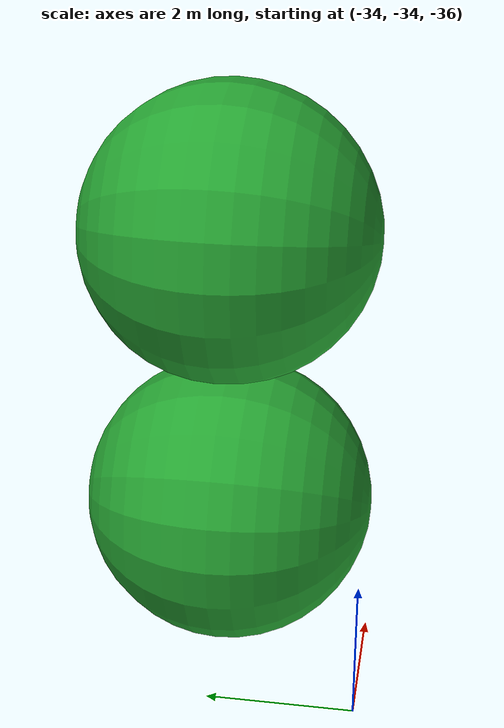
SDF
<?xml version='1.0'?>
<sdf version="1.6">

         <model name="mesh">
             <static>0</static>
             <self_collide>0</self_collide>
             <allow_auto_disable>1</allow_auto_disable>

             <frame name="object_frame">
                 <pose frame="/world">0 0 0 0 -0 0 </pose>
             </frame>

             <pose frame="/world">0 0 0 0 -0 0</pose>

        <link name="pSphere1">

                     <gravity>1</gravity>
                     <self_collide>0</self_collide>
                     <kinematic>0</kinematic>

                     <frame name="link_frame">
                         <pose frame="object_frame">0 0 0 0 -0 0</pose>
                     </frame>

                     <!-- red green blue offsets: model pivot point -->
                     <!-- 32 is just half of the voxelgrid dimension (64)-->
                     <pose name="link_frame">-32 -32 -32 0 -0 0</pose>

                     <inertial>
                         <mass>32.76</mass>
                         <inertia>
                             <!-- http://gazebosim.org/tutorials?tut=inertia&cat=build_robot -->
                             <ixx>51.77328</ixx>
                             <ixy>0.0</ixy>
                             <ixz>1e-05</ixz>
                             <iyy>51.34782</iyy>
                             <iyz>-0.0</iyz>
                             <izz>51.77327</izz>
                         </inertia>

                         <frame name="link_inertia_frame">
                             <pose frame="link_frame">0 0 0 0 -0 0</pose>
                         </frame>

                         <pose frame="link_inertia_frame">0.0 0.0 2.0 0 0 0                         </pose>
                     </inertial>

                     <collision name="collision">
                         <max_contacts>20</max_contacts>

                         <!-- A frame of reference to which a pose is relative. -->
                         <frame name="collision_frame">
                             <pose frame="link_frame">0 0 0 0 -0 0</pose>
                         </frame>
                         <!-- A position(x,y,z) and orientation(roll, pitch yaw) with respect to the specified frame. -->
                         <pose frame="collision_frame">0 0 0 0 -0 0</pose>

                         <geometry>
                             <mesh>
                                 <uri>E:\##All those tasteless damn boring stuff\#±ÏÒµÉè¼Ä\obj2sdf\stl2sdf/double_spheres.obj_sdf/pSphere1.stl</uri>
                                 <!-- Scaling factor applied to the mesh -->
                                 <scale>1.0 1.0 1.0</scale>
                             </mesh>
                         </geometry>
                         <!-- http://sdformat.org/spec?ver=1.6&elem=collision#surface_soft_contact -->
                         <surface></surface>
                     </collision>

                     <visual name="visual">
                         <cast_shadows>1</cast_shadows>
                         <transparency>0</transparency>

                         <frame name="visual_frame">
                             <pose frame="link_frame">0 0 0 0 -0 0</pose>
                         </frame>
                         <pose frame="visual_frame">0 0 0 0 -0 0</pose>

                         <material>

                             <script>
                                 <uri>file://media/materials/scripts/gazebo.material</uri>
                                 <name>Gazebo/Green</name>
                             </script>
                             <shader type="vertex">
                               <normal_map>__default__</normal_map>
                             </shader>

                             <lighting>1</lighting>
                             <ambient>0.15 0.75 0.35 1</ambient>
                             <diffuse>0.1 0.95 0.25 1</diffuse>
                             <specular>0.01 0.01 0.01 1</specular>
                             <emissive>0 0 0 1</emissive>
                         </material>

                         <geometry>
                             <mesh>
                                 <uri>E:\##All those tasteless damn boring stuff\#±ÏÒµÉè¼Ä\obj2sdf\stl2sdf/double_spheres.obj_sdf/pSphere1.stl</uri>
                                 <!-- Scaling factor applied to the mesh -->
                                 <scale>1.0 1.0 1.0</scale>
                             </mesh>
                         </geometry>
                     </visual>
                 </link>
        <link name="pSphere2">

                     <gravity>1</gravity>
                     <self_collide>0</self_collide>
                     <kinematic>0</kinematic>

                     <frame name="link_frame">
                         <pose frame="object_frame">0 0 0 0 -0 0</pose>
                     </frame>

                     <!-- red green blue offsets: model pivot point -->
                     <!-- 32 is just half of the voxelgrid dimension (64)-->
                     <pose name="link_frame">-32 -32 -32 0 -0 0</pose>

                     <inertial>
                         <mass>32.76</mass>
                         <inertia>
                             <!-- http://gazebosim.org/tutorials?tut=inertia&cat=build_robot -->
                             <ixx>51.77328</ixx>
                             <ixy>0.0</ixy>
                             <ixz>1e-05</ixz>
                             <iyy>51.34782</iyy>
                             <iyz>-0.0</iyz>
                             <izz>51.77327</izz>
                         </inertia>

                         <frame name="link_inertia_frame">
                             <pose frame="link_frame">0 0 0 0 -0 0</pose>
                         </frame>

                         <pose frame="link_inertia_frame">0.0 0.0 -2.0 0 0 0                         </pose>
                     </inertial>

                     <collision name="collision">
                         <max_contacts>20</max_contacts>

                         <!-- A frame of reference to which a pose is relative. -->
                         <frame name="collision_frame">
                             <pose frame="link_frame">0 0 0 0 -0 0</pose>
                         </frame>
                         <!-- A position(x,y,z) and orientation(roll, pitch yaw) with respect to the specified frame. -->
                         <pose frame="collision_frame">0 0 0 0 -0 0</pose>

                         <geometry>
                             <mesh>
                                 <uri>E:\##All those tasteless damn boring stuff\#±ÏÒµÉè¼Ä\obj2sdf\stl2sdf/double_spheres.obj_sdf/pSphere2.stl</uri>
                                 <!-- Scaling factor applied to the mesh -->
                                 <scale>1.0 1.0 1.0</scale>
                             </mesh>
                         </geometry>
                         <!-- http://sdformat.org/spec?ver=1.6&elem=collision#surface_soft_contact -->
                         <surface></surface>
                     </collision>

                     <visual name="visual">
                         <cast_shadows>1</cast_shadows>
                         <transparency>0</transparency>

                         <frame name="visual_frame">
                             <pose frame="link_frame">0 0 0 0 -0 0</pose>
                         </frame>
                         <pose frame="visual_frame">0 0 0 0 -0 0</pose>

                         <material>

                             <script>
                                 <uri>file://media/materials/scripts/gazebo.material</uri>
                                 <name>Gazebo/Green</name>
                             </script>
                             <shader type="vertex">
                               <normal_map>__default__</normal_map>
                             </shader>

                             <lighting>1</lighting>
                             <ambient>0.15 0.75 0.35 1</ambient>
                             <diffuse>0.1 0.95 0.25 1</diffuse>
                             <specular>0.01 0.01 0.01 1</specular>
                             <emissive>0 0 0 1</emissive>
                         </material>

                         <geometry>
                             <mesh>
                                 <uri>E:\##All those tasteless damn boring stuff\#±ÏÒµÉè¼Ä\obj2sdf\stl2sdf/double_spheres.obj_sdf/pSphere2.stl</uri>
                                 <!-- Scaling factor applied to the mesh -->
                                 <scale>1.0 1.0 1.0</scale>
                             </mesh>
                         </geometry>
                     </visual>
                 </link>
    </model>
     </sdf>
